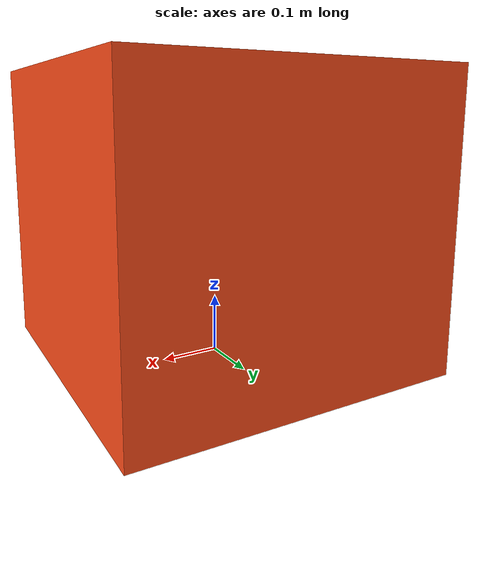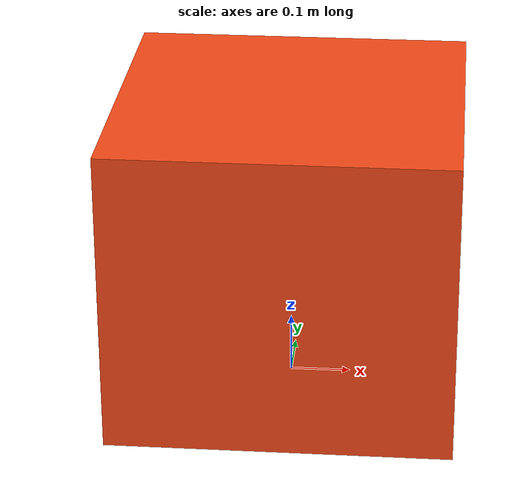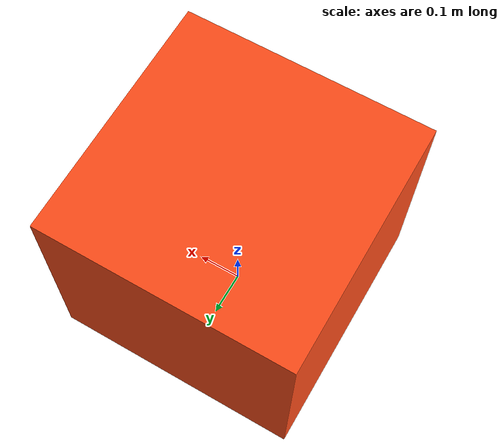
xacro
<?xml version="1.0"?>
<robot xmlns:xacro="http://www.ros.org/wiki/xacro" >

    <xacro:include filename="inertial_macros.xacro"/>

    <xacro:property name="chassis_length" value="0.560"/>
    <xacro:property name="chassis_width" value="0.560"/>
    <xacro:property name="chassis_height" value="0.5"/>
    <xacro:property name="chassis_mass" value="1.0"/>
    <xacro:property name="wheel_radius" value="0.052"/>
    <xacro:property name="wheel_thickness" value="0.034"/>
    <xacro:property name="wheel_mass" value="0.05"/>
    <xacro:property name="wheel_offset_x" value="0.2035"/>
    <xacro:property name="wheel_offset_y" value="0.253"/>
    <xacro:property name="wheel_offset_z" value="0.052"/>
    <xacro:property name="caster_wheel_radius" value="0.01"/>
    <xacro:property name="caster_wheel_mass" value="0.01"/>
    <xacro:property name="caster_wheel_offset_x" value="0.075"/>
    <xacro:property name="caster_wheel_offset_z" value="${wheel_offset_z - wheel_radius + caster_wheel_radius}"/>

    <material name="white">
        <color rgba="1 1 1 1" />
    </material>

    <material name="orange">
        <color rgba="1 0.3 0.1 1"/>
    </material>

    <material name="blue">
        <color rgba="0.2 0.2 1 1"/>
    </material>

    <material name="black">
        <color rgba="0 0 0 1"/>
    </material>

    <material name="red">
        <color rgba="1 0 0 1"/>
    </material>

    <link name="base_link">

    </link>

    <!-- IMU frame -->
    <link name="imu_link">
    <!-- vizuál/kolize jsou volitelné; pro TF stačí samotný link -->
    <inertial>
        <origin xyz="0 0 0" rpy="0 0 0"/>
        <mass value="0.01"/>
        <inertia ixx="1e-6" ixy="0" ixz="0" iyy="1e-6" iyz="0" izz="1e-6"/>
    </inertial>
    </link>

    <!-- Fixed transform base_link -> imu_link -->
    <joint name="base_to_imu" type="fixed">
    <parent link="base_link"/>
    <child link="imu_link"/>

    <!-- Umístění IMU vůči base_link (v metrech) -->
    <origin xyz="0.055 -0.33 0.21" rpy="0 0 0"/>
    </joint>

     <!-- BASE_FOOTPRINT LINK -->

    <joint name="base_footprint_joint" type="fixed">
        <parent link="base_link"/>
        <child link="base_footprint"/>
        <origin xyz="0 0 0" rpy="0 0 0"/>
    </joint>

    <link name="base_footprint">
    </link>

    <!-- CHASSIS LINK -->

    <joint name="chassis_joint" type="fixed">
        <parent link="base_link"/>
        <child link="chassis"/>
        <origin xyz="0 0 0"/>
    </joint>

    <link name="chassis">
        <visual>
            <origin xyz="0 0 ${chassis_height/2}"/>
            <geometry>
                <box size="${chassis_length} ${chassis_width} ${chassis_height}"/>
            </geometry>
            <material name="orange"/>
        </visual>
        <collision>
            <origin xyz="0 0 ${chassis_height/2}"/>
            <geometry>
                <box size="${chassis_length} ${chassis_width} ${chassis_height}"/>
            </geometry>
        </collision>
        <xacro:inertial_box mass="0.5" x="${chassis_length}" y="${chassis_width}" z="${chassis_height}">
            <origin xyz="0 0 ${chassis_height/2}" rpy="0 0 0"/>
        </xacro:inertial_box>
    </link>

    <!-- LEFT FRONT WHEEL LINK -->

    <joint name="front_left_wheel_joint" type="continuous">
        <parent link="base_link"/>
        <child link="front_left_wheel"/>
        <origin xyz="${wheel_offset_x} ${wheel_offset_y} ${wheel_offset_z}" rpy="-${pi/2} 0 0" />
        <axis xyz="0 0 1"/>
    </joint>

    <link name="front_left_wheel">
        <visual>
            <geometry>
                <cylinder radius="${wheel_radius}" length="${wheel_thickness}"/>
            </geometry>
            <material name="blue"/>
        </visual>
        <collision>
            <geometry>
                <sphere radius="${wheel_radius}"/>
            </geometry>
        </collision>
        <xacro:inertial_cylinder mass="${wheel_mass}" length="${wheel_thickness}" radius="${wheel_radius}">
            <origin xyz="0 0 0" rpy="0 0 0"/>
        </xacro:inertial_cylinder>
    </link>

    <!-- RIGHT FRONT WHEEL LINK -->

    <joint name="front_right_wheel_joint" type="continuous">
        <parent link="base_link"/>
        <child link="front_right_wheel"/>
        <origin xyz="${wheel_offset_x} ${-wheel_offset_y} ${wheel_offset_z}" rpy="${pi/2} 0 0" />
        <axis xyz="0 0 -1"/>
    </joint>

    <link name="front_right_wheel">
        <visual>
            <geometry>
                <cylinder radius="${wheel_radius}" length="${wheel_thickness}"/>
            </geometry>
            <material name="blue"/>
        </visual>
        <collision>
            <geometry>
                <sphere radius="${wheel_radius}"/>
            </geometry>
        </collision>
        <xacro:inertial_cylinder mass="${wheel_mass}" length="${wheel_thickness}" radius="${wheel_radius}">
            <origin xyz="0 0 0" rpy="0 0 0"/>
        </xacro:inertial_cylinder>
    </link>

    <!-- LEFT BACK WHEEL LINK -->

    <joint name="rear_left_wheel_joint" type="continuous">
        <parent link="base_link"/>
        <child link="rear_left_wheel"/>
        <origin xyz="${-wheel_offset_x} ${wheel_offset_y} ${wheel_offset_z}" rpy="-${pi/2} 0 0" />
        <axis xyz="0 0 1"/>
    </joint>

    <link name="rear_left_wheel">
        <visual>
            <geometry>
                <cylinder radius="${wheel_radius}" length="${wheel_thickness}"/>
            </geometry>
            <material name="blue"/>
        </visual>
        <collision>
            <geometry>
                <sphere radius="${wheel_radius}"/>
            </geometry>
        </collision>
        <xacro:inertial_cylinder mass="${wheel_mass}" length="${wheel_thickness}" radius="${wheel_radius}">
            <origin xyz="0 0 0" rpy="0 0 0"/>
        </xacro:inertial_cylinder>
    </link>

    <!-- RIGHT BACK WHEEL LINK -->

    <joint name="rear_right_wheel_joint" type="continuous">
        <parent link="base_link"/>
        <child link="rear_right_wheel"/>
        <origin xyz="${-wheel_offset_x} ${-wheel_offset_y} ${wheel_offset_z}" rpy="${pi/2} 0 0" />
        <axis xyz="0 0 -1"/>
    </joint>

    <link name="rear_right_wheel">
        <visual>
            <geometry>
                <cylinder radius="${wheel_radius}" length="${wheel_thickness}"/>
            </geometry>
            <material name="blue"/>
        </visual>
        <collision>
            <geometry>
                <sphere radius="${wheel_radius}"/>
            </geometry>
        </collision>
        <xacro:inertial_cylinder mass="${wheel_mass}" length="${wheel_thickness}" radius="${wheel_radius}">
            <origin xyz="0 0 0" rpy="0 0 0"/>
        </xacro:inertial_cylinder>
    </link>

    <!-- Lineární vozík / posuvný díl -->
    <link name="linear_carriage_link">
    <inertial>
        <mass value="0.5"/>
        <origin xyz="0 0 0" rpy="0 0 0"/>
        <inertia ixx="0.001" ixy="0" ixz="0" iyy="0.001" iyz="0" izz="0.001"/>
    </inertial>
    </link>

    <!-- Prismatic joint pro lineární posun -->
    <joint name="linear_axis_joint" type="prismatic">
    <parent link="base_link"/>
    <child link="linear_carriage_link"/>

    <!-- osa posuvu (uprav podle reality) -->
    <axis xyz="1 0 0"/>

    <!-- limity v metrech + max rychlost (m/s) -->
    <limit lower="0.0" upper="0.20" effort="50" velocity="0.05"/>

    <origin xyz="0 0 0" rpy="0 0 0"/>
    </joint>

</robot>
